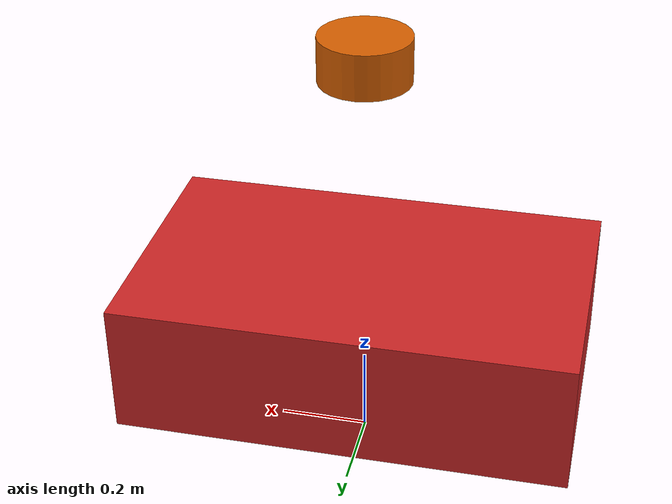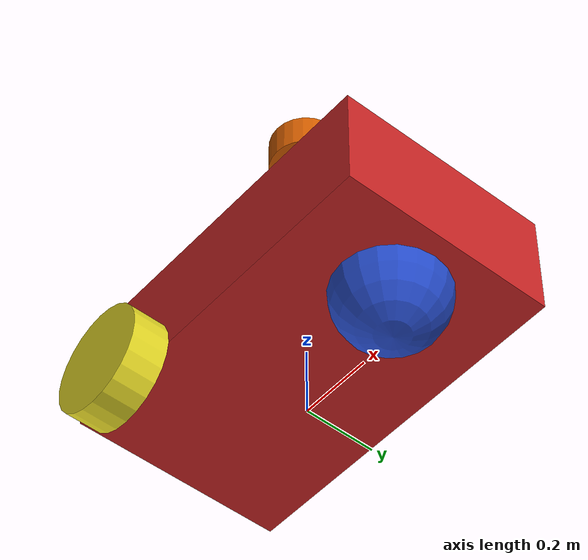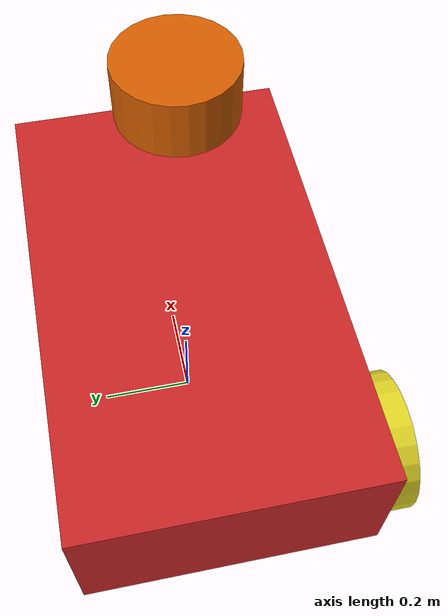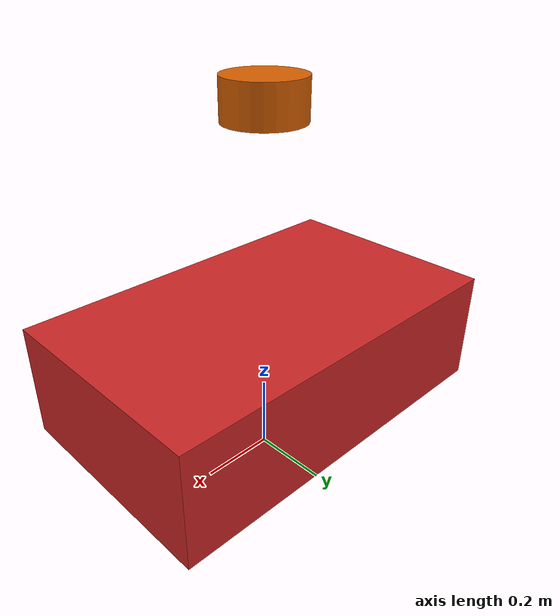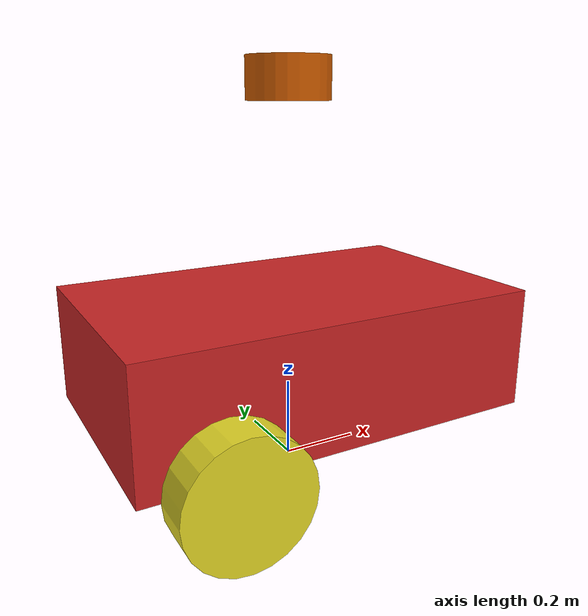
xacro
<?xml version="1.0"?>
<!-- SOURCE: https://www.youtube.com/watch?v=wOa1m8hzrgQ -->
<!-- URDF DESCRIPTION OF THE DIFFERENTIAL DRIVE ROBOT    -->
<!-- Reference/Source Aleksandar Haber                   -->
<!-- Refer to liscence for questions                     -->

<robot name="ember_bot" xmlns:xacro="https://www.ros.org/wiki/xacro">
<!--            Geometry & Constants                     -->
<!--            MARK: G & C                              -->

<!-- Pi Constant-->
<xacro:property name="pi_const" value="3.14159265"/>

<!-- Body Dimensions -->
<xacro:property name="a" value="1.0"/>
<xacro:property name="b" value="0.3"/>
<xacro:property name="c" value="0.6"/>

<!-- Wheel & Caster Dimensions -->
<!-- Wheel & Caser Radius -->
<xacro:property name="r" value="0.15"/>
<!-- Wheel Width -->
<xacro:property name="d" value="0.1"/>

<!-- Distances Between Certain Centres In Reference Robot -->
<xacro:property name="s1" value="${b/2+r}"/>
<xacro:property name="s2" value="${2*r}"/>
<xacro:property name="s3" value="${2*r}"/>
<xacro:property name="s4" value="${c/2+d/2}"/>

<!--                  Mass & Inertia                     -->
<!--                  MARK: M & I                        -->

<!-- Material Density -->
<xacro:property name="d1" value="2710.0"/>
<xacro:property name="d2" value="2710.0"/>
<xacro:property name="d3" value="2710.0"/>

<!-- Robot Body, Wheel, and Caster Mass -->
<xacro:property name="m1" value="${d1*a*b*c}"/>
<xacro:property name="m2" value="${d2*pi_const*r*r*d}"/>
<xacro:property name="m3" value="${d3*(4.0/3.0)*pi_const*r*r*r}"/>

<!-- Moments of Inertia of the Robot Body -->
<!-- Note Due to reference bot being symmetric, number of inertias are cut in half -->
<xacro:property name="Ix_body" value="${(1/12)*m1*(b*b+c*c)}"/>
<xacro:property name="Iy_body" value="${(1/12)*m1*(a*a+b*b)}"/>
<xacro:property name="Iz_body" value="${(1/12)*m1*(a*a+c*c)}"/>

<!-- Moments of Intertia of the Wheel -->
<xacro:property name="Iz_wheel" value="${0.5*m2*r*r}"/>
<xacro:property name="I_wheel" value="${(1.0/12.0)*m2*(3.0*r*r+d*d))}"/>

<!-- Moments of Inertia of the Caster Sphere -->
<xacro:property name="I_caster" value="${(2.0/5.0)*m3*r*r)}"/>

<!-- This Macro Defines the Complete Inertial Section of the Robot Body -->
<!-- Utilized Later in the Code -->
<xacro:macro name="inertia_body">
    <inertial>
        <mass value="${m1}"/>
        <inertia ixx="${Ix_body}" ixy="0.0" ixz="0.0" iyy="${Iy_body}" iyz="0" izz="${Iz_body}"/>
    </inertial>
</xacro:macro>

<!-- This Macro Defines the Complete Inertial Section of the Wheel -->
<xacro:macro name="inertia_wheel">
    <inertial>
        <origin rpy="1.570795 0 0" xyz="0 0 0"/>
        <mass value="${m2}"/>
        <inertia ixx="${I_wheel}" ixy="0.0" ixz="0.0" iyy="${I_wheel}" iyz="0" izz="${Iz_wheel}"/>
    </inertial>
</xacro:macro>

<!-- This Macro Defines the Complete Inertial Section of the Caster -->
<xacro:macro name="inertia_caster">
    <inertial>
        <origin rpy="0 0 0" xyz="0 0 0"/>
        <mass value="${m3}"/>
        <inertia ixx="${I_caster}" ixy="0.0" ixz="0.0" iyy="${I_caster}" iyz="0" izz="${I_caster}"/>
    </inertial>
</xacro:macro>

<!--            Include Additional Files              -->
<!--            MARK: File Incl.                      -->

<!-- Over Here We Include the File that Defines Extra GZ Options and Motion Control Driver -->
<xacro:include filename="$(find ember_robot)/model/robot.gazebo"/>

<!-- MARK: LINKS, JOINTS HERE                        -->

<!-- START: Fictious Link of the Robot                -->
<!-- Minute 26:07 of tutorial -->
<!-- We need to have this link otherwise GZ will complain -->
<link name="base_footprint"></link>
<joint name="body_link_joint" type="fixed">
    <parent link="base_footprint"/>
    <child link="body_link"/>
</joint>

<!-- END: Fictious Link of the Robot                  -->

<!-- START: Body Link of the Robot                    -->
<link name="body_link">
    <visual>
        <geometry>
            <box size="${a} ${c} ${b}"/>
        </geometry>
        <!-- Discplacement & Orientation of the Geomtric Centre of the link with respec to the link -->
        <origin rpy="0 0 0" xyz="0 0 ${s1}"/>
    </visual>
    <!-- This allows for collision physics etc -->
    <collision>
        <geometry>
            <box size="${a} ${c} ${b}"/>
        </geometry>
        <origin rpy="0 0 0" xyz="0 0 ${s1}"/>
    </collision>

    <xacro:inertia_body/>
</link>

<!-- End: Body Link of the Robot                      -->

<!-- START: Back Right Wheel of the Robot and the Joint-->

<joint name="wheel_joint" type="continuous">
    <parent link="body_link"/>
    <child link="wheel1_link"/>
    <origin xyz="${-s2} ${-s4} ${r}" rpy="0 0 0"/>
    <axis xyz="0 1 0"/>
    <limit effort="50000" velocity="10"/>
    <dynamics damping="1.0" friction="1.0"/>
</joint>

<link name="wheel1_link">
    <visual>
        <origin xyz="0 0 0" rpy="1.570795 0 0"/>
        <geometry>
            <cylinder radius="${r}" length="${d}"/>
        </geometry>
    </visual>

    <collision>
        <origin xyz="0 0 0" rpy="1.570795 0 0"/>
        <geometry>
            <cylinder radius="${r}" length="${d}"/>
        </geometry>
    </collision>

    <xacro:inertia_wheel/>
</link>

<!-- END: Back Right Wheel of the Robot and the Joint  -->

<!-- START: Back Left Wheel of the Robot and the Joint-->

<joint name="wheel_joint" type="continuous">
    <parent link="body_link"/>
    <child link="wheel2_link"/>
    <origin xyz="${-s2} ${-s4} ${r}" rpy="0 0 0"/>
    <axis xyz="0 1 0"/>
    <limit effort="50000" velocity="10"/>
    <dynamics damping="1.0" friction="1.0"/>
</joint>

<link name="wheel2_link">
    <visual>
        <origin xyz="0 0 0" rpy="1.570795 0 0"/>
        <geometry>
            <cylinder radius="${r}" length="${d}"/>
        </geometry>
    </visual>

    <collision>
        <origin xyz="0 0 0" rpy="1.570795 0 0"/>
        <geometry>
            <cylinder radius="${r}" length="${d}"/>
        </geometry>
    </collision>

    <xacro:inertia_wheel/>
</link>

<!-- START: Caster Wheel                               -->

<joint name="caster_wheel" type="fixed">
    <parent link="body_link"/>
    <child link="caster_link"/>
    <origin xyz="${s3} 0 ${r}" rpy="0 0 0"/>
</joint>

<link name="caster_link">
    <visual>
        <origin xyz="0 0 0" rpy="0 0 0"/>
        <geometry>
            <sphere radius="${r}"/>
        </geometry>
    </visual>

    <collision>
        <origin xyz="0 0 0" rpy="0 0 0"/>
        <geometry>
            <sphere radius="${r}"/>
        </geometry>
    </collision>

    <xacro:inertia_caster/>
</link>

<!-- END: Caster Wheel                                 -->

<!-- START: LiDAR                                      -->

<joint name="lidar_joint" type="fixed">
    <origin xyz="0.0 0 ${b+r}" rpy="0 0 0"/>
    <parent link="body_link"/>
    <child link="lidar_link"/>
    <!--This means LiDAR should rotate around the y-axis -->
    <origin xyz="0 1 0" rpy="0 0 0"/>
</joint>

<link name="lidar_link">
    <visual>
        <origin xyz="0 0 0.5" rpy="0 0 0"/>
        <geometry>
            <cylinder radius="0.1" length="0.1"/>
        </geometry>
    </visual>

    <collision name="collision">
        <origin xyz="0 0 0.5" rpy="0 0 0"/>
        <geometry>
            <cylinder radius="0.1" length="0.1"/>
        </geometry>
    </collision>

    <inertial>
        <mass value="le-6"/>

    </inertial>

    <xacro:inertia_caster/>
</link>
<!-- END: LiDAR                                        -->

</robot>
